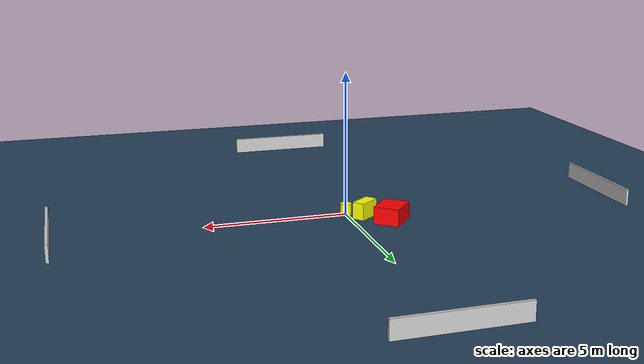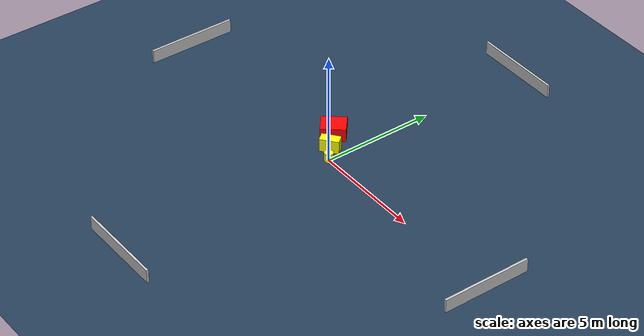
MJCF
<?xml version="1.0" ?>
<mujoco model="generated_environment">
  <option timestep="0.01" integrator="RK4" cone="elliptic"/>
  <default>
    <geom density="1"/>
  </default>
  <asset>
    <texture builtin="gradient" height="3072" name="skybox" rgb1="0.3 0.5 0.7" rgb2="0 0 0" type="skybox" width="512"/>
    <texture builtin="checker" height="300" name="groundplane" rgb1="0.2 0.3 0.4" rgb2="0.1 0.2 0.3" type="2d" width="300"/>
    <material name="groundplane" reflectance="0.2" texrepeat="5 5" texture="groundplane"/>
  </asset>
  <worldbody>
    <light dir="0 0 -1" directional="true" pos="0 0 1.5"/>
    <geom condim="3" friction="0.5 0.005 0.001" material="groundplane" name="floor" pos="0 0 0" size="0 0 0.05" type="plane"/>
    <body name="walls">
      <geom name="wall_1" condim="4" pos="-10.0 0.0 0.3" rgba="0.800000011920929 0.800000011920929 0.800000011920929 1.0" size="0.05 2.0 0.3" type="box"/>
      <geom name="wall_2" condim="4" pos="10.0 0.0 0.3" rgba="0.800000011920929 0.800000011920929 0.800000011920929 1.0" size="0.05 2.0 0.3" type="box"/>
      <geom name="wall_3" condim="4" pos="0.0 -10.0 0.3" rgba="0.800000011920929 0.800000011920929 0.800000011920929 1.0" size="2.0 0.05 0.3" type="box"/>
      <geom name="wall_4" condim="4" pos="0.0 10.0 0.3" rgba="0.800000011920929 0.800000011920929 0.800000011920929 1.0" size="2.0 0.05 0.3" type="box"/>
    </body>
    <body name="robot">
      <joint name="joint_x" type="slide" pos="0 0 0" axis="1 0 0"/>
      <joint name="joint_y" type="slide" pos="0 0 0" axis="0 1 0"/>
      <geom name="robot" type="cylinder" pos="0.0 0.0 0.2" size="0.2 0.2 0.0" mass="5.0" friction="1.0 0.005 0.0001" condim="4" rgba="1.0 1.0 0.0 1.0"/>
    </body>
    <body name="obstacle_1_movable">
      <geom name="obstacle_1_movable" condim="4" pos="-0.5333082197353777 0.47040650669878886 0.3" euler="0 0 218.62680545894634" friction="0.0 0.005 0.001" rgba="1.0 1.0 0.0 1.0" size="0.4195654834748503 0.21549393519340337 0.3" type="box" mass="0.1"/>
      <joint type="free"/>
    </body>
    <body name="obstacle_2_static">
      <geom name="obstacle_2_static" condim="4" pos="-1.2631352391419077 1.1777022496479688 0.3" euler="0 0 229.95452279804758" friction="0.0 0.005 0.001" rgba="1.0 0.0 0.0 1.0" size="0.5454975754416201 0.45124301994350496 0.3" type="box"/>
    </body>
  </worldbody>
  <actuator>
    <motor name="actuator_x" joint="joint_x" gear="1" ctrlrange="-1 1"/>
    <motor name="actuator_y" joint="joint_y" gear="1" ctrlrange="-1 1"/>
  </actuator>
</mujoco>
